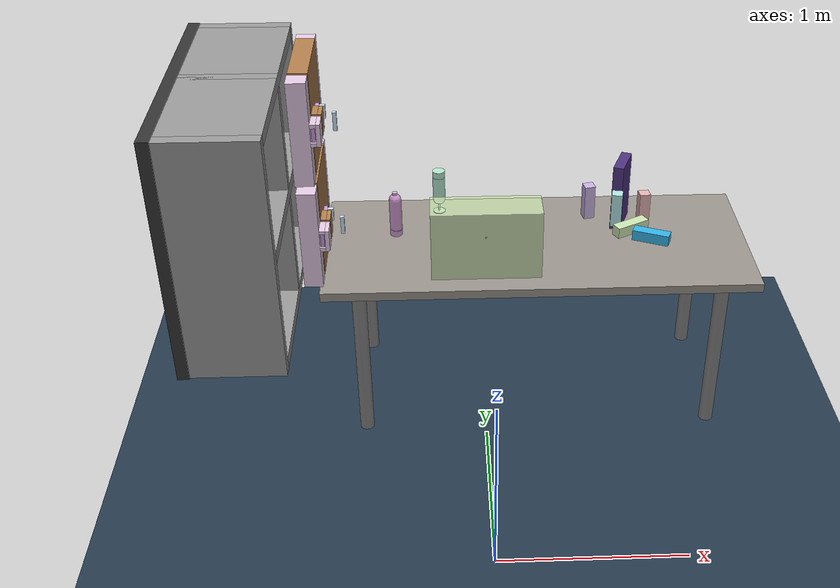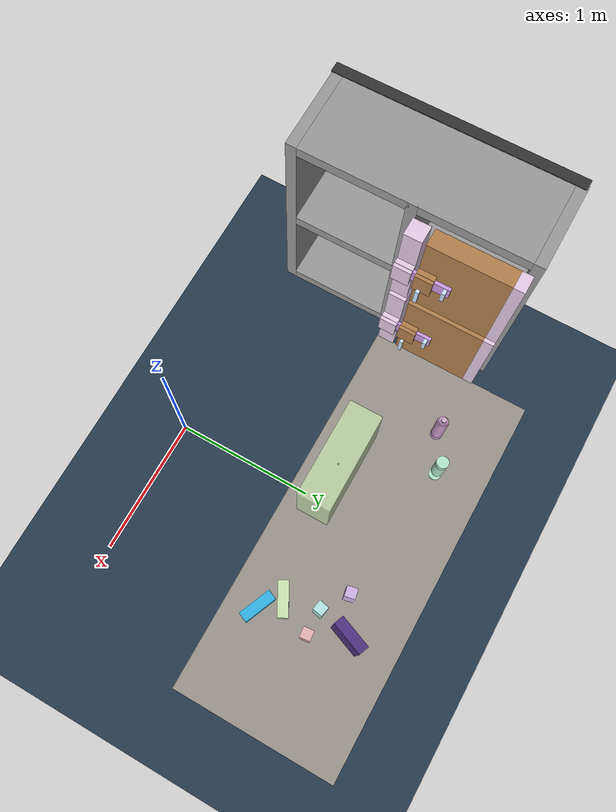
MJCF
<mujoco>
    <statistic extent="2" meansize=".05"/>
    <option timestep="0.001" solver="Newton" iterations="50" tolerance="1e-5" jacobian="sparse" cone="pyramidal" gravity='0 0 -9.81'/>

    <visual>
        <rgba haze="0.15 0.25 0.35 1"/>
        <quality shadowsize="2048"/>
        <map stiffness="700" shadowscale="0.5" fogstart="10" fogend="15" zfar="40" haze="0.3"/>
        <headlight ambient=".2 .2 .2" diffuse=".8 .8 .8" specular="0.1 0.1 0.1"/>
    </visual>

    <asset>
        <texture name="skybox" type="skybox" builtin="gradient" rgb1=".1 .1 .30" rgb2="0 0 0" width="800" height="800" mark="random" markrgb="1 1 1"/>

        <texture name="texplane" type="2d" builtin="checker" rgb1=".2 .3 .4" rgb2=".1 0.15 0.2"
            width="512" height="512" mark="cross" markrgb=".8 .8 .8"/>
        <material name="matplane" reflectance="0.0" texture="texplane" texrepeat="1 1" texuniform="true"/>

        <texture name='plane' type='2d' builtin='checker' rgb1='0.2 0.2 0.2' rgb2='0.3 0.3 0.3' width='512' height='512'/>
        <material name='plane' reflectance='0.0' texture='plane' texrepeat='1 1' texuniform='true'/>
		<texture name="texgeom" type="cube" builtin="flat" rgb1="1 1 1" rgb2="1 1 1" mark="random" markrgb=".3 .3 .4" random="0.05" width="512" height="512"/>
        <material name="geomMat" texture="texgeom" specular="0.75" shininess=".03"/>
		<texture name="texobj" type="cube" file="../../components/texture/marble.png"/>
		<material name="geomObj" texture="texobj" specular="0.95" shininess=".03" rgba=".8 .8 .8 1"/>
		<texture name="texsponge" type="2d" file="../../components/texture/sponge.png"/>
		<material name="matsponge" texture="texsponge" specular="0.3"/>
    </asset>

	<include file="../../components/door/asset.xml"/>
	<include file="../../components/table/asset.xml"/>
	<include file="../../components/box/asset.xml"/>

	<default>
    	<default class="obj">
			<geom solref="0.008 1" solimp="0.93 0.97 0.001" margin="0.001" user="0" type="mesh" rgba="1 1 1 1" material="geomMat" condim="4"/>
		</default>
    </default>

    <worldbody>
        <geom name="ground" type="plane" size="0 0 1" pos="0 0 0" quat="1 0 0 0" material="matplane" condim="6"/>
        <light mode='trackcom' pos='0 0 5' dir='0 0 -1'/>
        <light directional='true' pos='0 0 3' dir='0 0 -1' diffuse='0.2 0.2 0.2' specular='0 0 0'/>

        <body name="Table" pos="0.3 1.5 1">
			<include file="../../components/table/chain.xml"/>
		</body>

		<body name="DoorLR" pos="-.725 0.95 1.07" euler="0 0 1.57">
			<include file="../../components/door/chain0.xml"/>
		</body>

		<body name="DoorUR" pos="-.725 0.95 1.675" euler="0 0 1.57">
			<include file="../../components/door/chain1.xml"/>
		</body>

		<body name="Shelf" pos="-1.5 0.3 1">
			<include file="../../components/shelf/chain.xml"/>
		</body>

		<body childclass="obj" name="book" pos=".8 1.7 1.2" euler="0 0 1.2">
			<inertial pos="0 0 0" mass=".01" diaginertia="0.00005 0.00008 0.00004"/>
			<geom name="C_book" type="box" group="3" size="0.1 0.030 .2" rgba="0.1 0.5 0.6 1" contype="0" conaffinity="1"/>
			<geom group="1" name="V_book" type="box" size="0.1 0.030 .2" rgba="0.3 0.2 0.5 1"/>
			<joint name="Jrect" type="free" limited="false"/>
		</body>

		<body childclass="obj" name="bottle" pos="-.5 1.6 1.01" >
			<inertial pos="0 0 0.13" mass=".01" diaginertia="0.00003 0.00003 0.000005"/>
			<geom group="1" type="capsule"  size="0.0351 .095" rgba="0.8 0.6 0.8 1" pos="0 0 .125"/>
			<geom group="1" type="cylinder" size="0.0351 .02" rgba="0.8 0.6 0.8 1" pos="0 0 .015"/>
			<geom group="1" type="cylinder" size="0.015 .007" rgba="0.8 0.7 0.8 1" pos="0 0 .260"/>
			<geom type="capsule" group="3" size="0.035 0.09"  rgba="0.1 0.5 0.6 1" contype="0" conaffinity="1" pos="0 0 .13"/>
			<geom type="capsule" group="3" size="0.005 0.04"  rgba="0.1 0.5 0.6 1" contype="0" conaffinity="1" euler="1.57 0 0"/>
			<geom type="capsule" group="3" size="0.005 0.04"  rgba="0.1 0.5 0.6 1" contype="0" conaffinity="1" euler="0 1.57 0"/>
			<joint name="Jbottle" type="free" limited="false" damping="0.0001" armature="0"/>
		</body>

		<body childclass="obj" name="glass" pos="-.25 1.7 1.10">
			<inertial pos="0 0 0.13" mass=".05" diaginertia="0.00003 0.00003 0.000005"/>
			<geom group="1" type="capsule"  size="0.0351 .07"  rgba="0.7 0.9 0.8 1" pos="0 0 .15"/>
			<geom group="1" type="cylinder" size="0.0351 .002" rgba="0.7 0.9 0.8 1" pos="0 0 -.003"/>
			<geom group="1" type="cylinder" size="0.0351 .020" rgba="0.7 0.9 0.8 1" pos="0 0 .237"/>
			<geom group="1" type="cylinder" size="0.0050 .025" rgba="0.7 0.9 0.8 1" pos="0 0 .025"/>

			<geom type="capsule" group="3" size="0.035 0.07"  rgba="0.1 0.5 0.6 1" contype="0" conaffinity="1" pos="0 0 .15"/>
			<geom type="capsule" group="3" size="0.005 0.04"  rgba="0.1 0.5 0.6 1" contype="0" conaffinity="1" euler="1.57 0 0"/>
			<geom type="capsule" group="3" size="0.005 0.04"  rgba="0.1 0.5 0.6 1" contype="0" conaffinity="1" euler="0 1.57 0"/>

			<joint name="Jglass" type="free" limited="false" damping="0.0001" armature="0"/>
		</body>

		<body name="obj0" pos=".9 1.2 1.2" euler="0 0 -.4">
			<geom type="box" size=".1 .03 .03" rgba="0.2 0.7 0.9 1.0" material="geomObj"/>
			<joint type="free" limited="false"/>
		</body>
		<body name="obj1" pos=".9 1.5 1.2" euler="0 0 .1">
			<geom type="box" size=".03 .03 .1" rgba="0.9 0.7 0.7 1.0" material="geomObj"/>
			<joint type="free" limited="false"/>
		</body>
		<body name="obj2" pos=".6 1.6 1.2" euler="0 0 .2">
			<geom type="box" size=".03 .03 .1" rgba="0.8 0.7 0.9 1.0" material="geomObj"/>
			<joint type="free" limited="false"/>
		</body>
		<body name="obj3" pos=".75 1.5 1.2" euler="0 0 -.2">
			<geom type="box" size=".03 .03 .1" rgba="0.7 0.9 0.9 1.0" material="geomObj"/>
			<joint type="free" limited="false"/>
		</body>
		<body name="obj4" pos=".8 1.3 1.2"  euler="0 0 .5">
			<geom type="box" size=".1 .03 .03" rgba="0.8 0.9 0.7 1.0" material="geomObj"/>
			<joint type="free" limited="false"/>
		</body>

		<body name="Tool Box" pos="0 1.2 1.21"  euler="0 0 0">
			<geom type="box" mass="0.2" condim="6" contype="0" conaffinity="1" friction="2 0.1 0.1" size="0.3 0.1 .2" rgba="0.8 0.9 0.7 0.8" material="geomMat"/>
			<joint type="free" limited="false"/>
			<site name="box_center" pos="0 0 0" group="2" euler="0 0 0"/>
		</body>

<!--&lt;!&ndash;				skin could cause seg fault&ndash;&gt;-->

    </worldbody>

</mujoco>

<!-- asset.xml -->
<mujocoinclude>
	<compiler angle="radian"/>
    <asset>
    	<texture name="wood" type="2d" file="../../components/texture/wood.png"/>
		<material name="wood" texture="wood" reflectance="0.008" rgba="1 1 1 1"/>
	</asset>
</mujocoinclude>

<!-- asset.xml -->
<mujocoinclude>

	<asset>
		<texture name="marble2d" type="2d" file="../../components/texture/marble.png"/>
		<texture name="marblecube" type="cube" file="../../components/texture/marble.png"/>
        <texture name="texwood" type="2d" file="../../components/texture/wood.png"/>

        <material name="tablewood" texture="texwood" rgba=".7 .7 .7 1"/>
		<material name="table2d" texture="marble2d" reflectance="0.3" rgba=".8 .8 .8 1"/>
		<material name="tablecube" texture="marblecube" rgba=".8 .8 .8 1"/>
	</asset>

</mujocoinclude>

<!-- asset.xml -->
<mujocoinclude>
	<asset>
		<texture file="../../components/texture/wood.png"/>
		<material name="MatWood" texture="wood" specular="0.4" shininess=".1" texrepeat="3 3"/>
		<material name="MatWoodR" texture="wood" specular="1" shininess=".3"  rgba="1 0.5 0.5 1"/>
        <material name="MatWoodG" texture="wood" specular="1" shininess=".3"  rgba="0.2 1 0.2 1"/>
        <material name="MatWoodB" texture="wood" specular="1" shininess=".3"/>
	</asset>

	<default>
        <default class="block">
            <geom type="box" size="0.0125 0.0125 0.0125"/>
        </default>
		 <default class="free">
            <joint type="hinge" damping="0" armature="0" limited="false"/>
        </default>
    </default>
</mujocoinclude>

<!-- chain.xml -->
<mujocoinclude>
	<geom condim="6" contype="1" conaffinity="1" type="box" group="1" material="table2d" pos="0 0 -0.025" size="1.2 .5 .025"/>
	<geom contype="0" conaffinity="0" type="cylinder" fromto="1.0 .4 -1.0 1.0 .4 -0.001" size="0.04"/>
	<geom contype="0" conaffinity="0" type="cylinder" fromto="-1.0 .4 -1.0 -1.0 .4 -0.001" size="0.04"/>
	<geom contype="0" conaffinity="0" type="cylinder" fromto="1.0 -.4 -1.0 1.0 -.4 -0.001" size="0.04"/>
	<geom contype="0" conaffinity="0" type="cylinder" fromto="-1.0 -.4 -1.0 -1.0 -.4 -0.001" size="0.04"/>
</mujocoinclude>

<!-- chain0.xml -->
<mujocoinclude>

       <light directional="false" cutoff="40" exponent="20" diffuse=".2 .2 .2" specular="1 1 1" pos="0.3 -.1 1.5" dir="0 -.2 -1"/>

		<body name="frameR1" pos="0.11 0.2 0.252">
			<geom type="box" pos="0.55 0 0" size="0.03 0.05 0.28" material="wood" rgba=".9 .8 .9 1" contype="0" conaffinity="0"/>

			<body name="door1" pos="0.27 0 0">
				<inertial pos="0.0296816 -0.00152345 0" quat="0.701072 0 0 0.713091" mass="2.43455" diaginertia="0.0913751 0.0521615 0.043714"/>
				<joint name="door_hinge1" type="hinge" pos="0.2 0 0" axis="0 0 1" range="0 2.57" damping="1" limited="true" armature=".01" frictionloss="2"/>
				<geom type="box" material="wood" pos="0.025 0 0" size="0.225 0.05 0.28" condim="3" friction="1 1 1"/>
				<geom type="box" material="wood" pos="-0.15 -0.065 -0.051" size="0.05 0.015 0.01"/>
				<geom type="box" material="wood" pos="-0.15 -0.065 0.051" size="0.05 0.015 0.01"/>
				<geom type="box" material="wood" pos="-0.15 -0.09 0" size="0.05 0.011 0.06"/>
				<geom type="box" pos="-0.15 -0.16 0" size="0.01 0.01 0.05" rgba=".8 .9 1 1"/>

				<body name="latch1" pos="-0.16 -.065 0">
					<inertial pos="0.00421615 -0.00101188 0" quat="0.503954 0.503954 0.496015 0.496015" mass="0.465708" diaginertia="0.00382767 0.0036416 0.000242359"/>
					<geom type="box" material="wood"  rgba=".8 .6 .9 1" size="0.15 0.01 0.0375" condim="1"/>
					<joint name="slide1" type="slide" pos="0 0 0" axis="1 0 0" range="0 .15" limited="true" frictionloss="10"/>
					<geom type="box" pos="0.125 -0.02 0" size="0.01 0.02 0.035" rgba=".8 .9 1 1"/>
				</body>
			</body>
		</body>

        <body name="frameL1" pos="0.11 0.2 0.252">
			<geom type="box" material="wood" rgba=".9 .8 .9 1" size="0.05 0.05 0.28" condim="3"/>
            <geom type="box" material="wood" rgba=".9 .8 .9 1" pos="0 -0.065 -0.051" size="0.05 0.015 0.01" condim="1"/>
            <geom type="box" material="wood" rgba=".9 .8 .9 1" pos="0 -0.065 0.051" size="0.05 0.015 0.01" condim="1"/>
            <geom type="box" material="wood" rgba=".9 .8 .9 1" pos="0 -0.09 0" size="0.05 0.011 0.06" condim="1"/>
        </body>

</mujocoinclude>

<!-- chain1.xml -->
<mujocoinclude>

		<body name="frameR" pos="0.11 0.2 0.252">
			<geom type="box" pos="0.55 0 0" size="0.03 0.05 0.28" material="wood" rgba=".9 .8 .9 1" contype="0" conaffinity="0"/>

			<body name="door" pos="0.27 0 0">
				<inertial pos="0.0296816 -0.00152345 0" quat="0.701072 0 0 0.713091" mass="2.43455" diaginertia="0.0913751 0.0521615 0.043714"/>
				<joint name="door_hinge" type="hinge" pos="0.2 0 0" axis="0 0 1" range="0 2.5" damping="1" limited="true" armature=".01" frictionloss="2"/>
				<geom type="box" material="wood" pos="0.025 0 0" size="0.225 0.05 0.28" condim="3" friction="1 1 1"/>
				<geom type="box" material="wood" pos="-0.15 -0.065 -0.051" size="0.05 0.015 0.01"/>
				<geom type="box" material="wood" pos="-0.15 -0.065 0.051" size="0.05 0.015 0.01"/>
				<geom type="box" material="wood" pos="-0.15 -0.09 0" size="0.05 0.011 0.06"/>
				<geom type="box" pos="-0.15 -0.16 0" size="0.01 0.01 0.05" rgba=".8 .9 1 1"/>

				<body name="latch" pos="-0.16 -.065 0">
					<inertial pos="0.00421615 -0.00101188 0" quat="0.503954 0.503954 0.496015 0.496015" mass="0.465708" diaginertia="0.00382767 0.0036416 0.000242359"/>
					<geom type="box" material="wood"  rgba=".8 .6 .9 1" size="0.15 0.01 0.0375" condim="1"/>
					<joint name="slide" type="slide" pos="0 0 0" axis="1 0 0" range="0 .15" limited="true" frictionloss="10"/>
					<geom type="box" pos="0.125 -0.02 0" size="0.01 0.02 0.035" rgba=".8 .9 1 1"/>
				</body>
			</body>
		</body>

        <body name="frameL" pos="0.11 0.2 0.252">
			<geom type="box" material="wood" rgba=".9 .8 .9 1" size="0.05 0.05 0.28" condim="3"/>
            <geom type="box" material="wood" rgba=".9 .8 .9 1" pos="0 -0.065 -0.051" size="0.05 0.015 0.01" condim="1"/>
            <geom type="box" material="wood" rgba=".9 .8 .9 1" pos="0 -0.065 0.051" size="0.05 0.015 0.01" condim="1"/>
            <geom type="box" material="wood" rgba=".9 .8 .9 1" pos="0 -0.09 0" size="0.05 0.011 0.06" condim="1"/>
        </body>

</mujocoinclude>

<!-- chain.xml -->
<!-- ======================================================
Shelf
====================================================== -->
<mujocoinclude>
        <body pos="0.25 0.685 0.63">
            <geom conaffinity="3" contype="4" name="table" rgba="0.6 0.6 0.6 1.0" size="0.25 0.625 0.03" type="box"/>
        </body>
        <body pos="0.25 0.685 0.03">
            <geom conaffinity="3" contype="4" name="bottom" rgba="0.6 0.6 0.6 1.0" size="0.25 0.625 0.03" type="box"/>
        </body>
        <body pos="0.25 0.685 1.23">
            <geom conaffinity="3" contype="4" name="top" rgba="0.6 0.6 0.6 1.0" size="0.25 0.625 0.03" type="box"/>
        </body>
        <body pos="0.25 0.03 0.63">
            <geom conaffinity="3" contype="4" name="bar1" rgba="0.6 0.6 0.6 1.0" size="0.25 0.03 0.63" type="box"/>
        </body>
        <body pos="0.25 0.685 0.63">
            <geom conaffinity="3" contype="4" name="bar2" rgba="0.6 0.6 0.6 1.0" size="0.25 0.03 0.63" type="box"/>
        </body>
        <body pos="0.25 1.34 0.63">
            <geom conaffinity="3" contype="4" name="bar3" rgba="0.6 0.6 0.6 1.0" size="0.25 0.03 0.63" type="box"/>
        </body>
        <body pos="0 0.68 0.63">
            <geom conaffinity="3" contype="4" name="back" rgba="0.2 0.2 0.2 1.0" size="0.03 0.685 0.635" type="box"/>
        </body>

        <body name="annotation:outer_bound" pos="0.25 0.685 0.63">
            <geom conaffinity="2" contype="4" mass="0.0" pos="0 0 0" rgba="1 0 1 0.0" size="0.25 0.685 0.63" type="box"/>
        </body>

        <body name="annotation:inside_0" pos="0.25 0.3575 0.33">
          <geom type="box" group="5" conaffinity="2" contype="4" pos="0 0 0" size="0.25 0.2975 0.27" rgba="1 0 0 0.1" mass="0.0"/>
        </body>

        <body name="annotation:inside_1" pos="0.25 0.3575 0.93">
          <geom type="box" group="5" conaffinity="2" contype="4" pos="0 0 0" size="0.25 0.2975 0.27" rgba="1 0 0 0.1" mass="0.0"/>
        </body>

        <body name="annotation:inside_2" pos="0.25 1.0125 0.33">
          <geom type="box" group="5" conaffinity="2" contype="4" pos="0 0 0" size="0.25 0.2975 0.27" rgba="1 0 0 0.1" mass="0.0"/>
        </body>

        <body name="annotation:inside_3" pos="0.25 1.0125 0.93">
          <geom type="box" group="5" conaffinity="2" contype="4" pos="0 0 0" size="0.25 0.2975 0.27" rgba="1 0 0 0.1" mass="0.0"/>
        </body>

</mujocoinclude>
